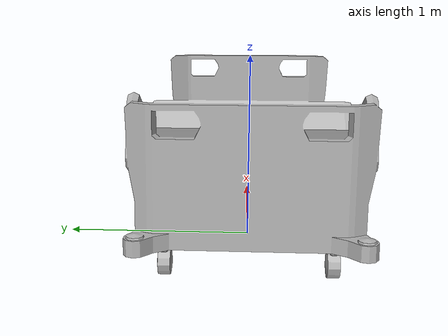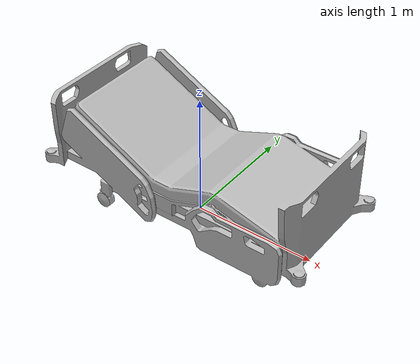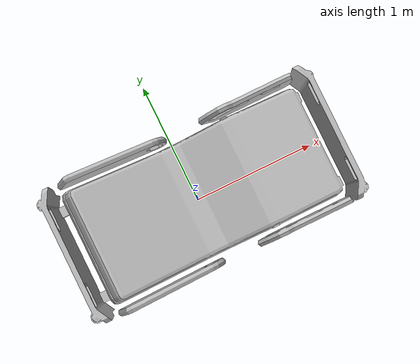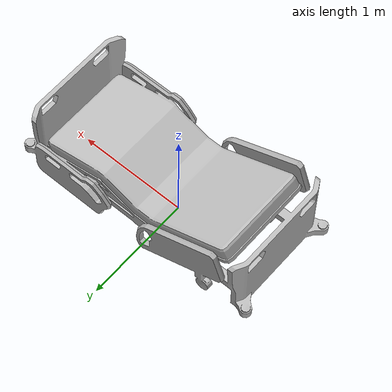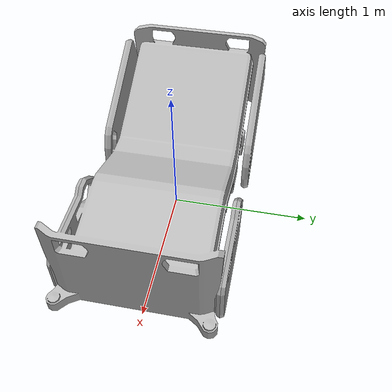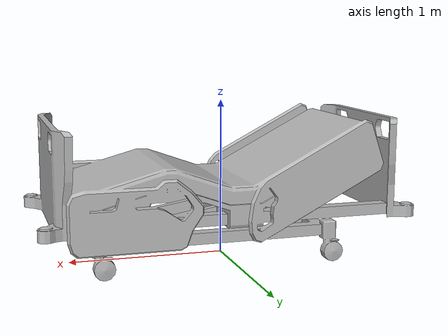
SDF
<?xml version='1.0' encoding='utf-8'?>
<sdf version="1.6">
  <model name="CGMClassic">
   <static>true</static>
    <link name="body">
      <pose>0 0 0 0 0 0</pose>

      <visual name="visual">
        <geometry>
          <mesh>
            <uri>model://CGMClassic/meshes/CGMClassic.obj</uri>
            <scale>0.01 0.01 0.01</scale>
          </mesh>
        </geometry>
      </visual>

      <collision name="collision">
        <geometry>
          <mesh>
            <uri>model://CGMClassic/meshes/CGMClassic.obj</uri>
            <scale>0.01 0.01 0.01</scale>
          </mesh>
        </geometry>
      </collision>

    </link>
  </model>
</sdf>
